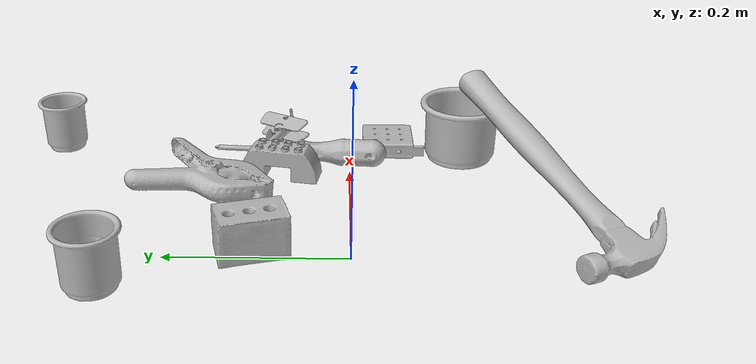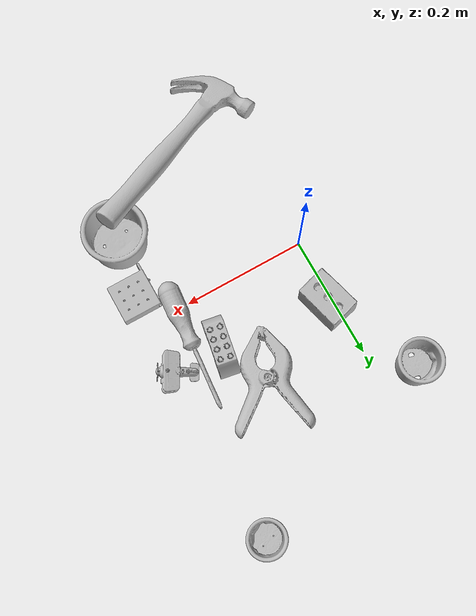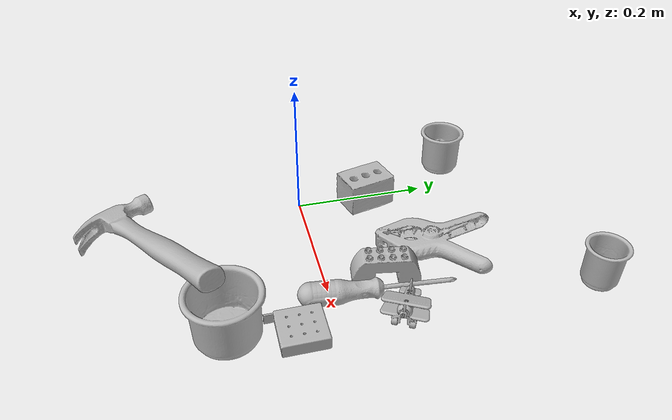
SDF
<sdf version="1.4">
  <world name="default">
    <light name="light1" type="point">
      <pose>0 0 1 0 0 0</pose>
      <diffuse>3 3 3 1</diffuse>
      <specular>3 3 3 1</specular>
    </light>
    <light name="light2" type="point">
      <pose>0 0.5 2 0 0 0</pose>
      <diffuse>1 1 1 1</diffuse>
      <specular>1 1 1 1</specular>
    </light>
    <light name="light3" type="point">
      <pose>0 0.5 2 0 0 0</pose>
      <diffuse>3 3 3 1</diffuse>
      <specular>3 3 3 1</specular>
    </light>
    <scene>
      <ambient>0.7 0.7 0.7</ambient>
    </scene>
    <model name="cup1">
      <link name="link_cup1">
        <collision name="default">
          <geometry>
            <mesh>
              <uri>model://j_cups/collision_meshes/collision.obj</uri>
              <scale>1.0 1.0 1.0</scale>
            </mesh>
          </geometry>
          <surface>
            <friction>
              <ode>
                <mu>0.5</mu>
                <mu2>0.5</mu2>
              </ode>
            </friction>
          <contact>
        <ode>
            <max_vel>0</max_vel>
            <min_depth>0.0001</min_depth>
            <kp>1e8</kp>
        </ode>
    </contact></surface>
        </collision>
        <visual name="default">
          <geometry>
            <mesh>
              <uri>model://j_cups/visual_meshes/visual.dae</uri>
              <scale>1.0 1.0 1.0</scale>
            </mesh>
          </geometry>
        </visual>
        <inertial>
          <mass>0.1112113818526268</mass>
          <pose>0.0006164852529764175 0.0005398975918069482 -0.0013479019980877638 0.030303955005909274 0.03757984422505388 0.4386955526072484</pose>
          <inertia>
            <ixx>0.00016329347</ixx>
            <iyy>0.00016499148</iyy>
            <izz>0.00018824349</izz>
            <ixy>0</ixy>
            <ixz>0</ixz>
            <iyz>0</iyz>
          </inertia>
        </inertial>
      </link>
      <pose>0.2475254237651825 -0.1394515037536621 0.037990156561136246 5.8009004899294495e-06 -3.300949589165389e-05 0.328363187934728</pose>
    </model>
    <model name="cup2">
      <link name="link_cup2">
        <collision name="default">
          <geometry>
            <mesh>
              <uri>model://b_cups/collision_meshes/collision.obj</uri>
              <scale>1.0 1.0 1.0</scale>
            </mesh>
          </geometry>
          <surface>
            <friction>
              <ode>
                <mu>0.5</mu>
                <mu2>0.5</mu2>
              </ode>
            </friction>
          <contact>
        <ode>
            <max_vel>0</max_vel>
            <min_depth>0.0001</min_depth>
            <kp>1e8</kp>
        </ode>
    </contact></surface>
        </collision>
        <visual name="default">
          <geometry>
            <mesh>
              <uri>model://b_cups/visual_meshes/visual.dae</uri>
              <scale>1.0 1.0 1.0</scale>
            </mesh>
          </geometry>
        </visual>
        <inertial>
          <mass>0.040588438510894775</mass>
          <pose>0.0005182006862014532 0.001805859268642962 -0.001338181202299893 0.11356319114734177 0.03872522211554688 -0.34569586720892936</pose>
          <inertia>
            <ixx>2.6567977e-05</ixx>
            <iyy>2.6063572e-05</iyy>
            <izz>2.235645e-05</izz>
            <ixy>0</ixy>
            <ixz>0</ixz>
            <iyz>0</iyz>
          </inertia>
        </inertial>
      </link>
      <pose>0.26929306983947754 0.36786073446273804 0.03199618309736252 -0.00765573696699847 -0.0037870070587900056 -2.087749905677901</pose>
    </model>
    <model name="cup3">
      <link name="link_cup3">
        <collision name="default">
          <geometry>
            <mesh>
              <uri>model://d_cups/collision_meshes/collision.obj</uri>
              <scale>1.0 1.0 1.0</scale>
            </mesh>
          </geometry>
          <surface>
            <friction>
              <ode>
                <mu>0.5</mu>
                <mu2>0.5</mu2>
              </ode>
            </friction>
          <contact>
        <ode>
            <max_vel>0</max_vel>
            <min_depth>0.0001</min_depth>
            <kp>1e8</kp>
        </ode>
    </contact></surface>
        </collision>
        <visual name="default">
          <geometry>
            <mesh>
              <uri>model://d_cups/visual_meshes/visual.dae</uri>
              <scale>1.0 1.0 1.0</scale>
            </mesh>
          </geometry>
        </visual>
        <inertial>
          <mass>0.030152590945363045</mass>
          <pose>0.000806804746389389 0.0019117394695058465 -0.0022666517179459333 0.2401234305416289 -0.2470973002062907 0.5942515272324471</pose>
          <inertia>
            <ixx>2.5244808e-05</ixx>
            <iyy>2.517175e-05</iyy>
            <izz>2.2850849e-05</izz>
            <ixy>0</ixy>
            <ixz>0</ixz>
            <iyz>0</iyz>
          </inertia>
        </inertial>
      </link>
      <pose>-0.05548857897520065 0.2585225999355316 0.034658752381801605 3.7043510442472596e-05 2.2073660185124735e-05 0.7011442250186565</pose>
    </model>
    <model name="toy1">
      <link name="link_toy1">
        <collision name="default">
          <geometry>
            <mesh>
              <uri>model://e_lego_duplo/collision_meshes/collision.obj</uri>
              <scale>1.0 1.0 1.0</scale>
            </mesh>
          </geometry>
          <surface>
            <friction>
              <ode>
                <mu>0.5</mu>
                <mu2>0.5</mu2>
              </ode>
            </friction>
          <contact>
        <ode>
            <max_vel>0</max_vel>
            <min_depth>0.0001</min_depth>
            <kp>1e8</kp>
        </ode>
    </contact></surface>
        </collision>
        <visual name="default">
          <geometry>
            <mesh>
              <uri>model://e_lego_duplo/visual_meshes/visual.dae</uri>
              <scale>1.0 1.0 1.0</scale>
            </mesh>
          </geometry>
        </visual>
        <inertial>
          <mass>0.09282131493091583</mass>
          <pose>0.0003256045747548342 0.00023485456767957658 0.0019521460635587573 -0.022567664257634346 -6.825452093688492e-05 -0.007625138047361518</pose>
          <inertia>
            <ixx>1.9356308e-05</ixx>
            <iyy>7.944328e-05</iyy>
            <izz>7.736177e-05</izz>
            <ixy>0</ixy>
            <ixz>0</ixz>
            <iyz>0</iyz>
          </inertia>
        </inertial>
      </link>
      <pose>0.1890493780374527 0.08503834158182144 0.021808991208672523 1.2735898627908326e-06 3.9183504535661815e-09 1.3998157428485964</pose>
    </model>
    <model name="toy2">
      <link name="link_toy2">
        <collision name="default">
          <geometry>
            <mesh>
              <uri>model://nine_hole_peg_test/collision_meshes/collision.obj</uri>
              <scale>0.5 0.5 0.5</scale>
            </mesh>
          </geometry>
          <surface>
            <friction>
              <ode>
                <mu>0.5</mu>
                <mu2>0.5</mu2>
              </ode>
            </friction>
          <contact>
        <ode>
            <max_vel>0</max_vel>
            <min_depth>0.0001</min_depth>
            <kp>1e8</kp>
        </ode>
    </contact></surface>
        </collision>
        <visual name="default">
          <geometry>
            <mesh>
              <uri>model://nine_hole_peg_test/visual_meshes/visual.dae</uri>
              <scale>0.5 0.5 0.5</scale>
            </mesh>
          </geometry>
        </visual>
        <inertial>
          <mass>0.0661587193608284</mass>
          <pose>-0.002308693015947938 -0.0048238071613013744 1.3230345757619943e-05 -0.0014666794270044752 0.0007194176174711586 -0.6342418340283942</pose>
          <inertia>
            <ixx>2.5862508e-05</ixx>
            <iyy>2.4147552e-05</iyy>
            <izz>4.531874e-05</izz>
            <ixy>0</ixy>
            <ixz>0</ixz>
            <iyz>0</iyz>
          </inertia>
        </inertial>
      </link>
      <pose>0.26567861437797546 -0.054306574165821075 0.010385607369244099 8.827147414601468e-07 1.2093255156730584e-06 -3.134725648445132</pose>
    </model>
    <model name="toy3">
      <link name="link_toy3">
        <collision name="default">
          <geometry>
            <mesh>
              <uri>model://foam_brick/collision_meshes/collision.obj</uri>
              <scale>1.0 1.0 1.0</scale>
            </mesh>
          </geometry>
          <surface>
            <friction>
              <ode>
                <mu>0.5</mu>
                <mu2>0.5</mu2>
              </ode>
            </friction>
          <contact>
        <ode>
            <max_vel>0</max_vel>
            <min_depth>0.0001</min_depth>
            <kp>1e8</kp>
        </ode>
    </contact></surface>
        </collision>
        <visual name="default">
          <geometry>
            <mesh>
              <uri>model://foam_brick/visual_meshes/visual.dae</uri>
              <scale>1.0 1.0 1.0</scale>
            </mesh>
          </geometry>
        </visual>
        <inertial>
          <mass>0.15239986777305603</mass>
          <pose>-0.00025224717683158815 0.0003458431747276336 -0.00025321010616607964 -0.29401565585717926 0.017274441097588973 -0.0007449887293440311</pose>
          <inertia>
            <ixx>6.6571105e-05</ixx>
            <iyy>0.00010628419</iyy>
            <izz>0.00010763494</izz>
            <ixy>0</ixy>
            <ixz>0</ixz>
            <iyz>0</iyz>
          </inertia>
        </inertial>
      </link>
      <pose>0.011837286874651909 0.10568452626466751 0.025922803208231926 0.013416896764389922 0.004153004322438377 1.8346974736435804</pose>
    </model>
    <model name="toy4">
      <link name="link_toy4">
        <collision name="default">
          <geometry>
            <mesh>
              <uri>model://a_toy_airplane/collision_meshes/collision.obj</uri>
              <scale>0.25 0.25 0.25</scale>
            </mesh>
          </geometry>
          <surface>
            <friction>
              <ode>
                <mu>0.5</mu>
                <mu2>0.5</mu2>
              </ode>
            </friction>
          <contact>
        <ode>
            <max_vel>0</max_vel>
            <min_depth>0.0001</min_depth>
            <kp>1e8</kp>
        </ode>
    </contact></surface>
        </collision>
        <visual name="default">
          <geometry>
            <mesh>
              <uri>model://a_toy_airplane/visual_meshes/visual.dae</uri>
              <scale>0.25 0.25 0.25</scale>
            </mesh>
          </geometry>
        </visual>
        <inertial>
          <mass>0.01630575954914093</mass>
          <pose>0.006291272584348917 -0.0009268299327231944 -0.0002990612993016839 -0.012016942866631759 -0.1466350865210375 0.004149072887705313</pose>
          <inertia>
            <ixx>3.7008767e-06</ixx>
            <iyy>5.392928e-06</iyy>
            <izz>6.314456e-06</izz>
            <ixy>0</ixy>
            <ixz>0</ixz>
            <iyz>0</iyz>
          </inertia>
        </inertial>
      </link>
      <pose>0.26616135239601135 0.09072697162628174 0.02309042401611805 -6.106715211226924e-05 4.585550076131921e-06 -0.5066164767872164</pose>
    </model>
    <model name="hardware1">
      <link name="link_hardware1">
        <collision name="default">
          <geometry>
            <mesh>
              <uri>model://phillips_screwdriver/collision_meshes/collision.obj</uri>
              <scale>1.0 1.0 1.0</scale>
            </mesh>
          </geometry>
          <surface>
            <friction>
              <ode>
                <mu>0.5</mu>
                <mu2>0.5</mu2>
              </ode>
            </friction>
          <contact>
        <ode>
            <max_vel>0</max_vel>
            <min_depth>0.0001</min_depth>
            <kp>1e8</kp>
        </ode>
    </contact></surface>
        </collision>
        <visual name="default">
          <geometry>
            <mesh>
              <uri>model://phillips_screwdriver/visual_meshes/visual.dae</uri>
              <scale>1.0 1.0 1.0</scale>
            </mesh>
          </geometry>
        </visual>
        <inertial>
          <mass>0.05757145583629608</mass>
          <pose>-0.04777182266116142 0.001036230125464499 -0.000455554953077808 -0.1572215307256514 0.005850991069928943 -0.0021567397451199392</pose>
          <inertia>
            <ixx>6.764056e-06</ixx>
            <iyy>8.480946e-05</iyy>
            <izz>8.4881525e-05</izz>
            <ixy>0</ixy>
            <ixz>0</ixz>
            <iyz>0</iyz>
          </inertia>
        </inertial>
      </link>
      <pose>0.22653645277023315 0.06010593846440315 0.017132684588432312 0.057225478204059634 0.003528673424226226 1.4887019820356857</pose>
    </model>
    <model name="hardware2">
      <link name="link_hardware2">
        <collision name="default">
          <geometry>
            <mesh>
              <uri>model://hammer/collision_meshes/collision.obj</uri>
              <scale>1.0 1.0 1.0</scale>
            </mesh>
          </geometry>
          <surface>
            <friction>
              <ode>
                <mu>0.5</mu>
                <mu2>0.5</mu2>
              </ode>
            </friction>
          <contact>
        <ode>
            <max_vel>0</max_vel>
            <min_depth>0.0001</min_depth>
            <kp>1e8</kp>
        </ode>
    </contact></surface>
        </collision>
        <visual name="default">
          <geometry>
            <mesh>
              <uri>model://hammer/visual_meshes/visual.dae</uri>
              <scale>1.0 1.0 1.0</scale>
            </mesh>
          </geometry>
        </visual>
        <inertial>
          <mass>0.19043192267417908</mass>
          <pose>0.00941577646881342 -0.011892358772456646 -0.0001235063245985657 0.023155672419862355 -0.004792164441448863 -0.012760315407460211</pose>
          <inertia>
            <ixx>8.15718e-05</ixx>
            <iyy>0.0022103586</iyy>
            <izz>0.002273686</izz>
            <ixy>0</ixy>
            <ixz>0</ixz>
            <iyz>0</iyz>
          </inertia>
        </inertial>
      </link>
      <pose>0.10683633387088776 -0.23607127368450165 0.053432952612638474 -0.04866405048979077 0.28780345209883074 -2.6674824290151125</pose>
    </model>
    <model name="hardware3">
      <link name="link_hardware3">
        <collision name="default">
          <geometry>
            <mesh>
              <uri>model://large_clamp/collision_meshes/collision.obj</uri>
              <scale>1.0 1.0 1.0</scale>
            </mesh>
          </geometry>
          <surface>
            <friction>
              <ode>
                <mu>0.5</mu>
                <mu2>0.5</mu2>
              </ode>
            </friction>
          <contact>
        <ode>
            <max_vel>0</max_vel>
            <min_depth>0.0001</min_depth>
            <kp>1e8</kp>
        </ode>
    </contact></surface>
        </collision>
        <visual name="default">
          <geometry>
            <mesh>
              <uri>model://large_clamp/visual_meshes/visual.dae</uri>
              <scale>1.0 1.0 1.0</scale>
            </mesh>
          </geometry>
        </visual>
        <inertial>
          <mass>0.18636001646518707</mass>
          <pose>0.006369354669004679 0.0003585688828025013 -0.0001839799078879878 -0.0021330740505354343 0.009671591251539349 0.02663317297682702</pose>
          <inertia>
            <ixx>0.0001644205</ixx>
            <iyy>0.00031224336</iyy>
            <izz>0.00045169977</izz>
            <ixy>0</ixy>
            <ixz>0</ixz>
            <iyz>0</iyz>
          </inertia>
        </inertial>
      </link>
      <pose>0.15118105709552765 0.16697974503040314 0.018503759056329727 -0.011646098692157759 0.046929986014234495 -1.963576174404645</pose>
    </model>
  <physics type="ode">
      <max_contacts>50</max_contacts>
      <ode>
        <solver>
          <type>quick</type>
          <iters>75</iters>
        </solver>
        <constraints>
          <contact_max_correcting_vel>0</contact_max_correcting_vel>
          <contact_surface_layer>0</contact_surface_layer>
        </constraints>
      </ode>
    </physics></world>
</sdf>
